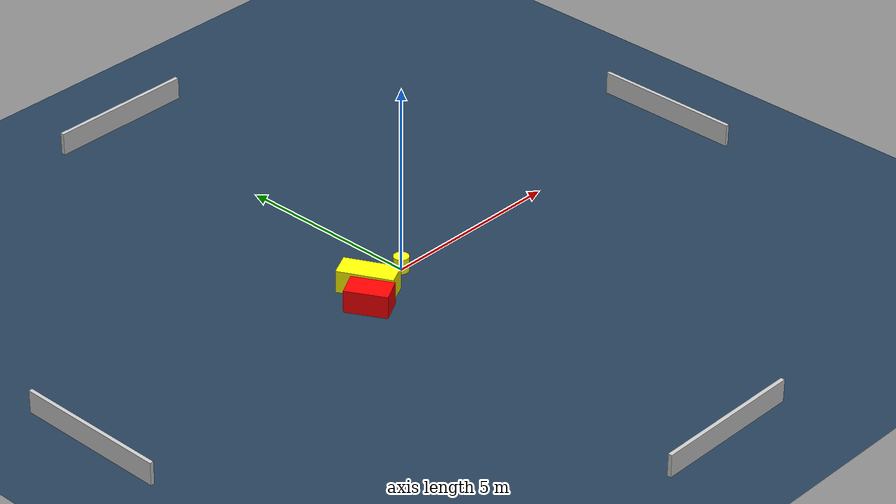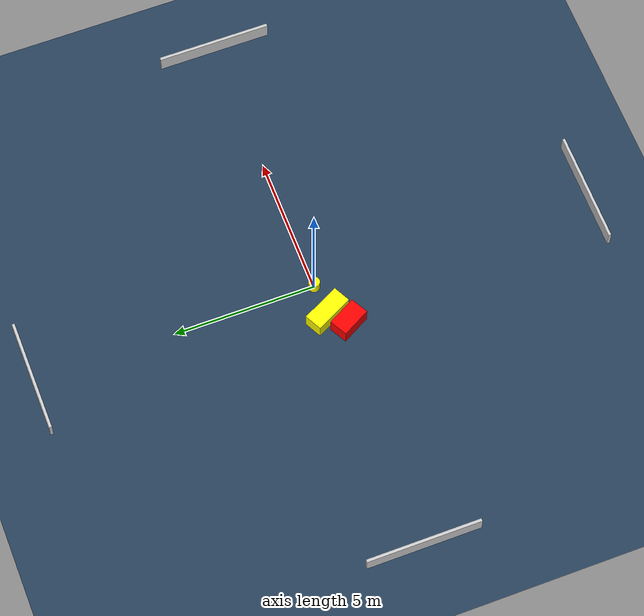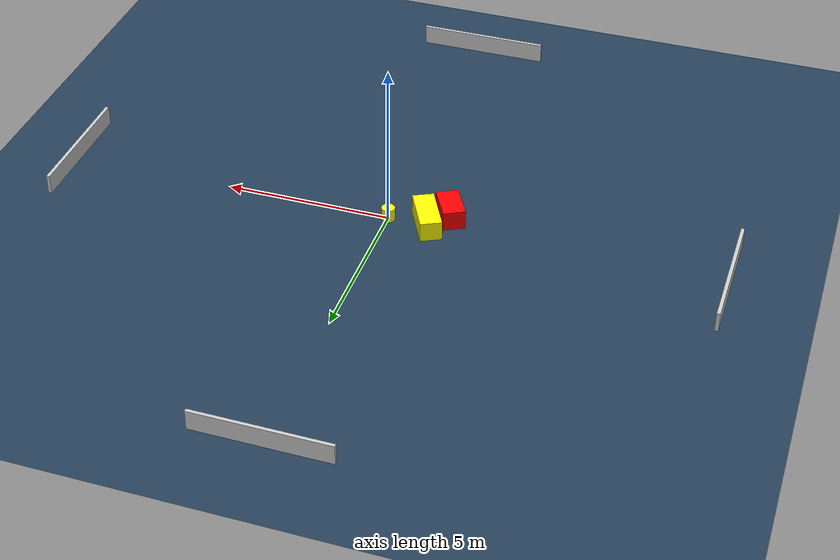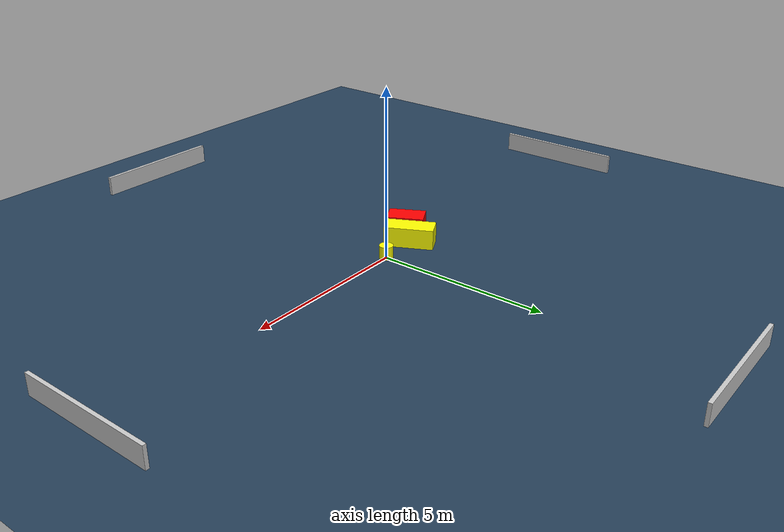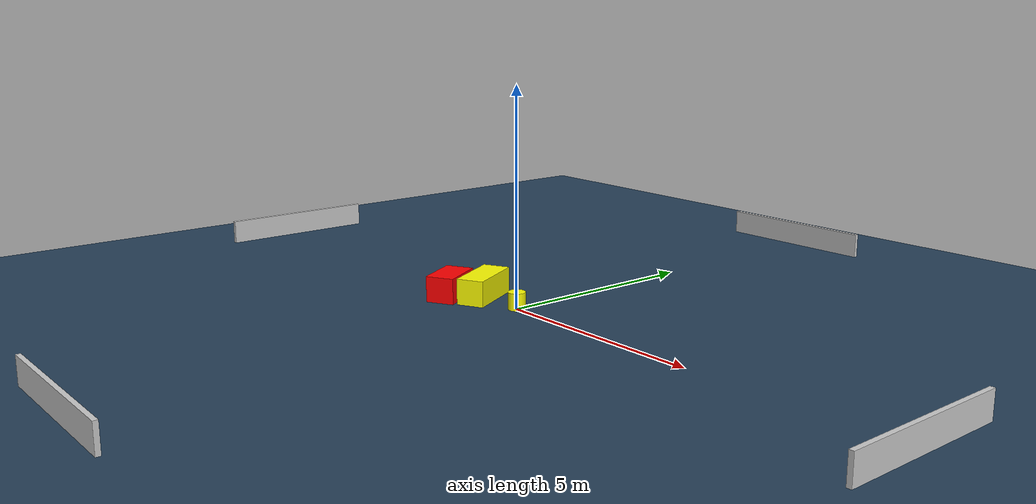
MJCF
<?xml version="1.0" ?>
<mujoco model="generated_environment">
  <option timestep="0.01" integrator="RK4" cone="elliptic"/>
  <default>
    <geom density="1"/>
  </default>
  <asset>
    <texture builtin="gradient" height="3072" name="skybox" rgb1="0.3 0.5 0.7" rgb2="0 0 0" type="skybox" width="512"/>
    <texture builtin="checker" height="300" name="groundplane" rgb1="0.2 0.3 0.4" rgb2="0.1 0.2 0.3" type="2d" width="300"/>
    <material name="groundplane" reflectance="0.2" texrepeat="5 5" texture="groundplane"/>
  </asset>
  <worldbody>
    <light dir="0 0 -1" directional="true" pos="0 0 1.5"/>
    <geom condim="3" friction="0.5 0.005 0.001" material="groundplane" name="floor" pos="0 0 0" size="0 0 0.05" type="plane"/>
    <body name="walls">
      <geom name="wall_1" condim="4" pos="-10.0 0.0 0.3" rgba="0.800000011920929 0.800000011920929 0.800000011920929 1.0" size="0.05 2.0 0.3" type="box"/>
      <geom name="wall_2" condim="4" pos="10.0 0.0 0.3" rgba="0.800000011920929 0.800000011920929 0.800000011920929 1.0" size="0.05 2.0 0.3" type="box"/>
      <geom name="wall_3" condim="4" pos="0.0 -10.0 0.3" rgba="0.800000011920929 0.800000011920929 0.800000011920929 1.0" size="2.0 0.05 0.3" type="box"/>
      <geom name="wall_4" condim="4" pos="0.0 10.0 0.3" rgba="0.800000011920929 0.800000011920929 0.800000011920929 1.0" size="2.0 0.05 0.3" type="box"/>
    </body>
    <body name="robot">
      <joint name="joint_x" type="slide" pos="0 0 0" axis="1 0 0"/>
      <joint name="joint_y" type="slide" pos="0 0 0" axis="0 1 0"/>
      <geom name="robot" type="cylinder" pos="0.0 0.0 0.2" size="0.2 0.2 0.0" mass="5.0" friction="1.0 0.005 0.0001" condim="4" rgba="1.0 1.0 0.0 1.0"/>
    </body>
    <body name="obstacle_1_movable">
      <geom name="obstacle_1_movable" condim="4" pos="-1.1721086302266142 -0.035391815556050824 0.3" euler="0 0 116.85391626662356" friction="0.0 0.005 0.001" rgba="1.0 1.0 0.0 1.0" size="0.7213678024715153 0.3212409267556438 0.3" type="box" mass="0.1"/>
      <joint type="free"/>
    </body>
    <body name="obstacle_2_static">
      <geom name="obstacle_2_static" condim="4" pos="-1.7209129881162044 -0.5918995777386924 0.3" euler="0 0 118.49838257949142" friction="0.0 0.005 0.001" rgba="1.0 0.0 0.0 1.0" size="0.5502589077135613 0.33404484180208366 0.3" type="box"/>
    </body>
  </worldbody>
  <actuator>
    <motor name="actuator_x" joint="joint_x" gear="1" ctrlrange="-1 1"/>
    <motor name="actuator_y" joint="joint_y" gear="1" ctrlrange="-1 1"/>
  </actuator>
</mujoco>
